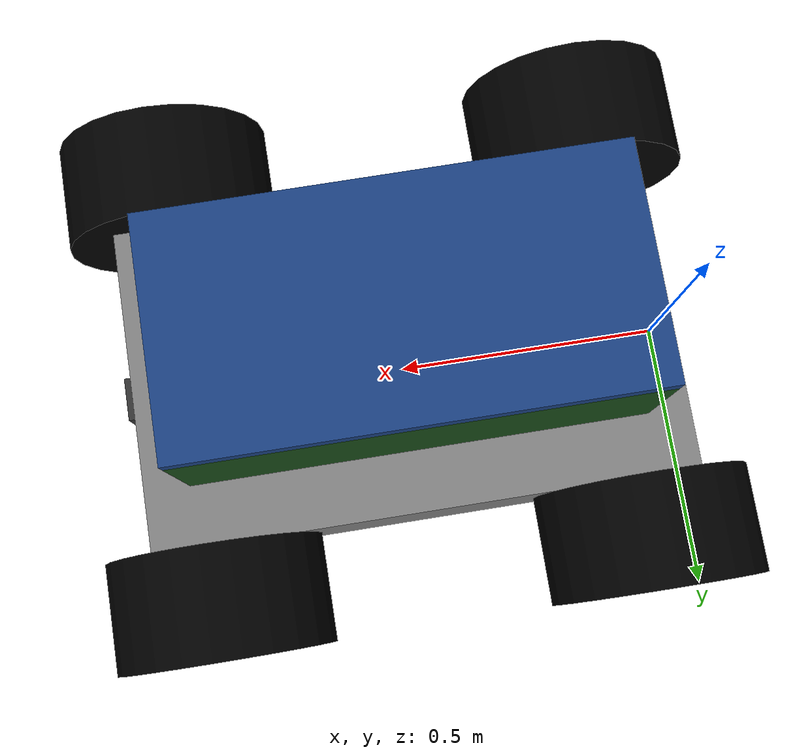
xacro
<?xml version="1.0" ?>
<robot name="myrobot">

<material name="grey">
    <color rgba="0.5 0.5 0.5 1"/>
</material>

<material name="black">
    <color rgba="0 0 0 1"/>
</material>

<material name="dark_green">
    <color rgba="0.1 0.3 0.1 1"/>
</material>

<material name="dark_grey">
    <color rgba="0.2 0.2 0.2 1"/>
</material>

<material name="dark_blue">
    <color rgba="0.1 0.25 0.5 1"/>
</material>

<link name="base_footprint"/>

<!-- Base Link -->

<joint name="chassijoint" type="fixed">
    <parent link="base_footprint"/>
    <child link="base_link"/>
    <origin xyz="0.5 0 0" rpy="0 0 0"/>
</joint>

<link name="base_link">
    <inertial>
        <mass value="5.0"/>
        <inertia ixx="0.1" ixy="0.0" ixz="0.0" iyy="0.1" iyz="0.0" izz="0.1"/>
    </inertial>
    <visual>
        <origin xyz="0 0 0.1" rpy="0 0 0"/>
        <geometry>
            <box size="1 0.6 0.2"/>
        </geometry>
        <material name="grey"/>
    </visual>
    <collision>
        <origin xyz="0 0 0.1" rpy="0 0 0"/>
        <geometry>
            <box size="1 0.6 0.2"/>
        </geometry>
    </collision>
</link>

<!-- Left Back Wheel -->

<joint name="lbwheel_joint" type="continuous">
    <parent link="base_link"/>
    <child link="lbwheel"/>
    <origin xyz="-0.4 0.3 0.1" rpy="-${pi/2} 0 0"/>
    <axis xyz="0 0 -1"/>
</joint>

<link name="lbwheel">
    <inertial>
        <mass value="0.5"/>
        <inertia ixx="0.01" ixy="0.0" ixz="0.0" iyy="0.01" iyz="0.0" izz="0.01"/>
    </inertial>
    <visual>
        <origin xyz="0 0 0.1" rpy="0 0 0"/>
        <geometry>
            <cylinder radius="0.2" length="0.2"/>
        </geometry>
        <material name="black"/>
    </visual>
    <collision>
        <origin xyz="0 0 0.1" rpy="0 0 0"/>
        <geometry>
            <cylinder radius="0.2" length="0.2"/>
        </geometry>
    </collision>
</link>

<!-- Left Front Wheel -->

<joint name="lfwheel_joint" type="continuous">
    <parent link="base_link"/>
    <child link="lfwheel"/>
    <origin xyz="0.4 0.3 0.1" rpy="-${pi/2} 0 0"/>
    <axis xyz="0 0 -1"/>
</joint>

<link name="lfwheel">
    <inertial>
        <mass value="0.5"/>
        <inertia ixx="0.01" ixy="0.0" ixz="0.0" iyy="0.01" iyz="0.0" izz="0.01"/>
    </inertial>
    <visual>
        <origin xyz="0 0 0.1" rpy="0 0 0"/>
        <geometry>
            <cylinder radius="0.2" length="0.2"/>
        </geometry>
        <material name="black"/>
    </visual>
    <collision>
        <origin xyz="0 0 0.1" rpy="0 0 0"/>
        <geometry>
            <cylinder radius="0.2" length="0.2"/>
        </geometry>
    </collision>
</link>

<!-- Right Front Wheel -->

<joint name="rfwheel_joint" type="continuous">
    <parent link="base_link"/>
    <child link="rfwheel"/>
    <origin xyz="0.4 -0.3 0.1" rpy="-${pi/2} 0 0"/>
    <axis xyz="0 0 -1"/>
</joint>

<link name="rfwheel">
    <inertial>
        <mass value="0.5"/>
        <inertia ixx="0.01" ixy="0.0" ixz="0.0" iyy="0.01" iyz="0.0" izz="0.01"/>
    </inertial>
    <visual>
        <origin xyz="0 0 -0.1" rpy="0 0 0"/>
        <geometry>
            <cylinder radius="0.2" length="0.2"/>
        </geometry>
        <material name="black"/>
    </visual>
    <collision>
        <origin xyz="0 0 -0.1" rpy="0 0 0"/>
        <geometry>
            <cylinder radius="0.2" length="0.2"/>
        </geometry>
    </collision>
</link>

<!-- Right Back Wheel -->

<joint name="rbwheel_joint" type="continuous">
    <parent link="base_link"/>
    <child link="rbwheel"/>
    <origin xyz="-0.4 -0.3 0.1" rpy="-${pi/2} 0 0"/>
    <axis xyz="0 0 1"/>
</joint>

<link name="rbwheel">
    <inertial>
        <mass value="0.5"/>
        <inertia ixx="0.01" ixy="0.0" ixz="0.0" iyy="0.01" iyz="0.0" izz="0.01"/>
    </inertial>
    <visual>
        <origin xyz="0 0 -0.1" rpy="0 0 0"/>
        <geometry>
            <cylinder radius="0.2" length="0.2"/>
        </geometry>
        <material name="black"/>
    </visual>
    <collision>
        <origin xyz="0 0 -0.1" rpy="0 0 0"/>
        <geometry>
            <cylinder radius="0.2" length="0.2"/>
        </geometry>
    </collision>
</link>

<!-- Box -->

<joint name="box_joint" type="fixed">
    <parent link="base_link"/>
    <child link="box"/>
    <origin xyz="0 0 0.3" rpy="0 0 0"/>
</joint>

<link name="box">
    <inertial>
        <mass value="1.0"/>
        <inertia ixx="0.05" ixy="0.0" ixz="0.0" iyy="0.05" iyz="0.0" izz="0.05"/>
    </inertial>
    <visual>
        <origin xyz="0 0 0" rpy="0 0 0"/>
        <geometry>
            <mesh filename="package://rostut/models/shooter/meshes/box.stl" scale="1 1 1"/>
        </geometry>
        <material name="dark_green"/>
    </visual>
    <collision>
        <origin xyz="0 0 0" rpy="0 0 0"/>
        <geometry>
            <box size="0.8 0.4 0.5"/>
        </geometry>
    </collision>
</link>

<!-- Lid -->

<joint name="lid_joint" type="revolute">
    <parent link="box"/>
    <child link="lid"/>
    <origin xyz="-0.4 0 0.25" rpy="0 0 0"/>
    <axis xyz="0 -1 0"/>
    <limit effort="10" velocity="1" lower="0" upper="1.57"/>
</joint>

<link name="lid">
    <inertial>
        <mass value="0.2"/>
        <inertia ixx="0.01" ixy="0.0" ixz="0.0" iyy="0.01" iyz="0.0" izz="0.01"/>
    </inertial>
    <visual>
        <origin xyz="0.4 0 0.0175" rpy="0 0 0"/>
        <geometry>
            <box size="0.8 0.4 0.035"/>
        </geometry>
        <material name="dark_blue"/>
    </visual>
    <collision>
        <origin xyz="0.4 0 0.0175" rpy="0 0 0"/>
        <geometry>
            <box size="0.8 0.4 0.035"/>
        </geometry>
    </collision>
</link>

<!-- Camera -->

<joint name="camera_joint" type="fixed">
    <parent link="base_link"/>
    <child link="camera"/>
    <origin xyz="0.5 0 0.1" rpy="0 0 0"/>
</joint>

<link name="camera">
    <inertial>
        <mass value="0.1"/>
        <inertia ixx="0.001" ixy="0.0" ixz="0.0" iyy="0.001" iyz="0.0" izz="0.001"/>
    </inertial>
    <visual>
        <origin xyz="0 0 0" rpy="0 0 0"/>
        <geometry>
            <box size="0.05 0.08 0.06"/>
        </geometry>
        <material name="dark_grey"/>
    </visual>
    <collision>
        <origin xyz="0 0 0" rpy="0 0 0"/>
        <geometry>
            <box size="0.05 0.08 0.06"/>
        </geometry>
    </collision>
</link>

<!-- Camera RGB Optical Frame -->
<joint name="camera_rgb_joint" type="fixed">
    <parent link="camera"/>
    <child link="camera_rgb_optical_frame"/>
    <origin xyz="0.025 0 0" rpy="-1.5708 0 -1.5708"/>
</joint>

<link name="camera_rgb_optical_frame">
    <inertial>
        <mass value="0.001"/>
        <inertia ixx="0.0001" ixy="0.0" ixz="0.0" iyy="0.0001" iyz="0.0" izz="0.0001"/>
    </inertial>
</link>

<!-- Lidar -->
<joint name="lidar_joint" type="fixed">
    <parent link="base_link"/>
    <child link="lidar"/>
    <origin xyz="0 0 0.2" rpy="0 0 0"/>
</joint>

<link name="lidar">
    <inertial>
        <mass value="0.5"/>
        <inertia ixx="0.01" ixy="0.0" ixz="0.0" iyy="0.01" iyz="0.0" izz="0.01"/>
    </inertial>
    <visual>
        <origin xyz="0 0 0" rpy="0 0 0"/>
        <geometry>
            <cylinder radius="0.1" length="0.1"/>
        </geometry>
        <material name="dark_grey"/>
    </visual>
    <collision>
        <origin xyz="0 0 0" rpy="0 0 0"/>
        <geometry>
            <cylinder radius="0.1" length="0.1"/>
        </geometry>
    </collision>
</link>

</robot>
